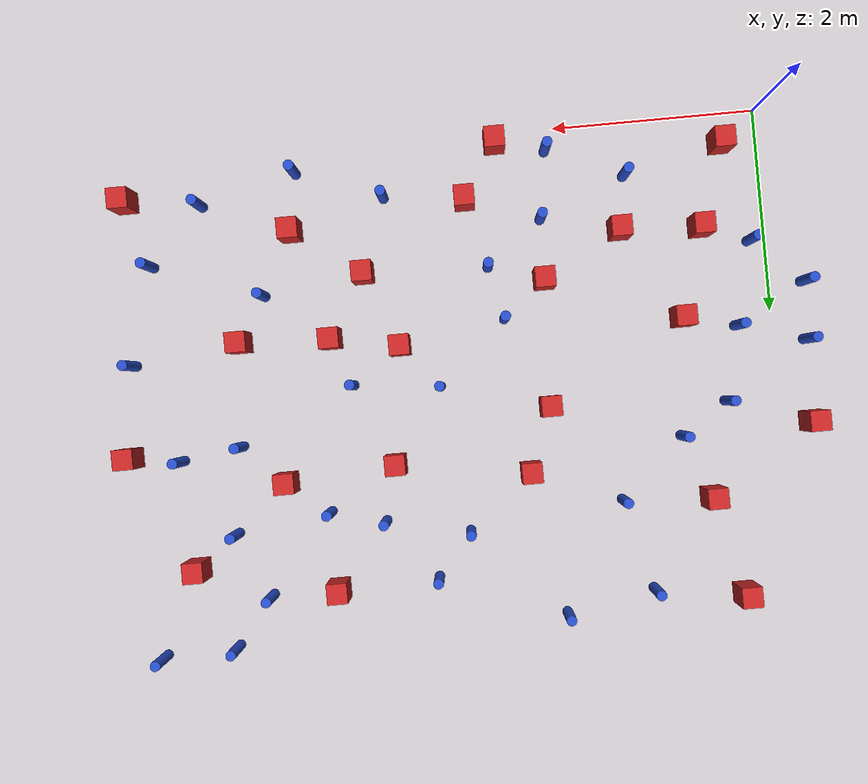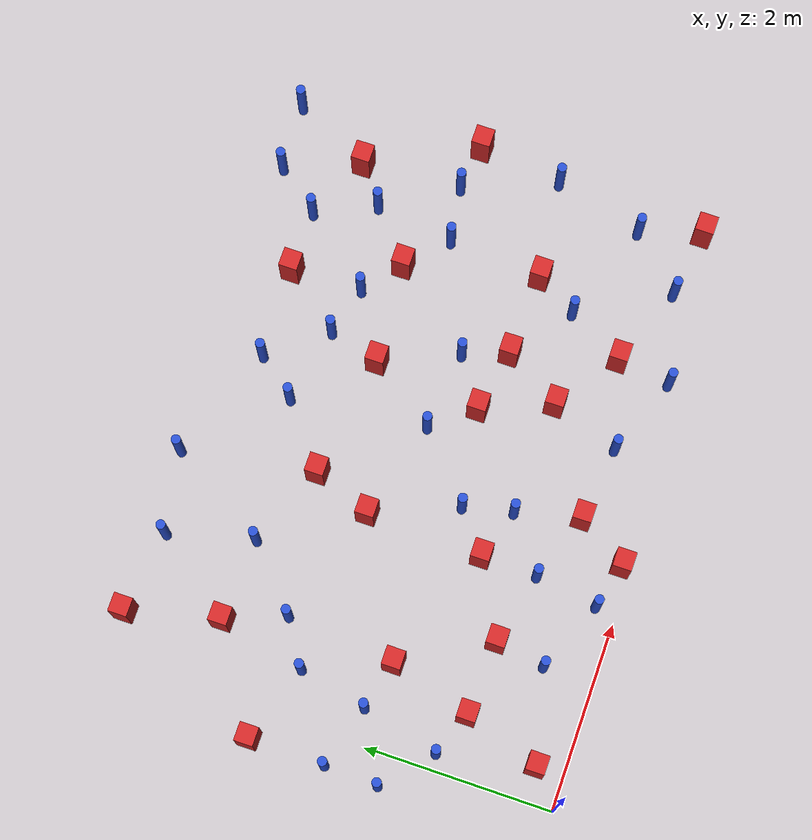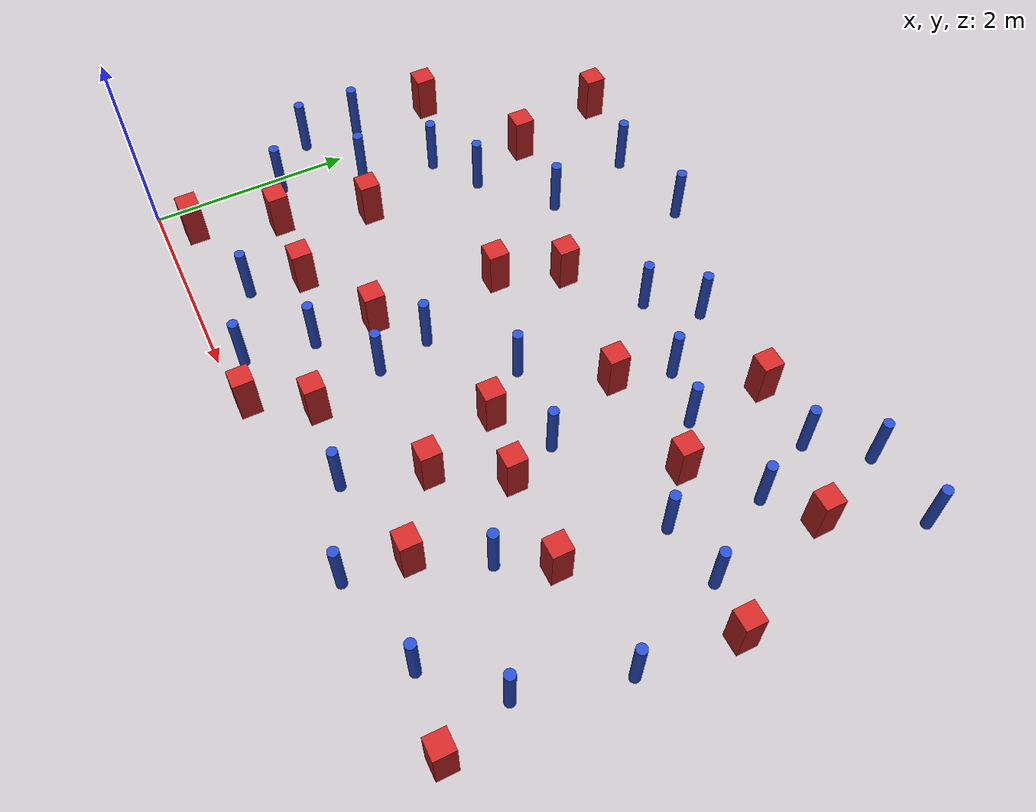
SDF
<sdf version="1.6">
 <model name="dense_69">
  <model name="pole_obstacle5">
   <static>true</static>
   <pose>5.55673570257 4.84575330785 7.38925637345e-09 -8.47170692796e-08 1.24976764786e-08 -1.74513093032e-07</pose>
   <link name="link">
    <pose>0 0 0.3 0 -0 0</pose>
    <inertial>
     <mass>1</mass>
     <inertia><ixx>0.145833</ixx><ixy>0</ixy><ixz>0</ixz><iyy>0.145833</iyy><iyz>0</iyz><izz>0.125</izz></inertia>
    </inertial>
    <collision name="collision">
     <geometry><cylinder><radius>0.05</radius><length>.6</length></cylinder></geometry>
    </collision>
    <visual name="visual">
     <geometry><cylinder><radius>0.05</radius><length>.6</length></cylinder></geometry>
     <material>
      <script><name>Gazebo/Blue</name><uri>file://media/materials/scripts/gazebo.material</uri></script>
     </material>
    </visual>
   </link>
  </model>
  <model name="pole_obstacle7">
   <static>true</static>
   <pose>0.532441098875 2.85423462872 7.38925637345e-09 -8.471706928e-08 1.2497676512e-08 -1.74513093015e-07</pose>
   <link name="link">
    <pose>0 0 0.3 0 -0 0</pose>
    <inertial>
     <mass>1</mass>
     <inertia><ixx>0.145833</ixx><ixy>0</ixy><ixz>0</ixz><iyy>0.145833</iyy><iyz>0</iyz><izz>0.125</izz></inertia>
    </inertial>
    <collision name="collision">
     <geometry><cylinder><radius>0.05</radius><length>.6</length></cylinder></geometry>
    </collision>
    <visual name="visual">
     <geometry><cylinder><radius>0.05</radius><length>.6</length></cylinder></geometry>
     <material>
      <script><name>Gazebo/Blue</name><uri>file://media/materials/scripts/gazebo.material</uri></script>
     </material>
    </visual>
   </link>
  </model>
  <model name="pole_obstacle9">
   <static>true</static>
   <pose>1.00213003306 3.16016807771 7.38925637345e-09 -8.471706928e-08 1.2497676505e-08 -1.74513093017e-07</pose>
   <link name="link">
    <pose>0 0 0.3 0 -0 0</pose>
    <inertial>
     <mass>1</mass>
     <inertia><ixx>0.145833</ixx><ixy>0</ixy><ixz>0</ixz><iyy>0.145833</iyy><iyz>0</iyz><izz>0.125</izz></inertia>
    </inertial>
    <collision name="collision">
     <geometry><cylinder><radius>0.05</radius><length>.6</length></cylinder></geometry>
    </collision>
    <visual name="visual">
     <geometry><cylinder><radius>0.05</radius><length>.6</length></cylinder></geometry>
     <material>
      <script><name>Gazebo/Blue</name><uri>file://media/materials/scripts/gazebo.material</uri></script>
     </material>
    </visual>
   </link>
  </model>
  <model name="pole_obstacle17">
   <static>true</static>
   <pose>6.28319913709 4.87998397393 7.38925637345e-09 -8.47170692796e-08 1.24976764786e-08 -1.74513093032e-07</pose>
   <link name="link">
    <pose>0 0 0.3 0 -0 0</pose>
    <inertial>
     <mass>1</mass>
     <inertia><ixx>0.145833</ixx><ixy>0</ixy><ixz>0</ixz><iyy>0.145833</iyy><iyz>0</iyz><izz>0.125</izz></inertia>
    </inertial>
    <collision name="collision">
     <geometry><cylinder><radius>0.05</radius><length>.6</length></cylinder></geometry>
    </collision>
    <visual name="visual">
     <geometry><cylinder><radius>0.05</radius><length>.6</length></cylinder></geometry>
     <material>
      <script><name>Gazebo/Blue</name><uri>file://media/materials/scripts/gazebo.material</uri></script>
     </material>
    </visual>
   </link>
  </model>
  <model name="square_post_obstacle13">
   <static>true</static>
   <pose>2.28083767182 2.75085976266 1.91545236811e-07 -7.35059704564e-06 1.12565212e-07 2.39332434364e-05</pose>
   <link name="link">
    <pose>0 0 0.25 0 -0 0</pose>
    <inertial>
     <mass>100</mass>
     <inertia>
      <ixx>0.166667</ixx>
      <ixy>0</ixy>
      <ixz>0</ixz>
      <iyy>0.166667</iyy>
      <iyz>0</iyz>
      <izz>0.166667</izz>
     </inertia>
    </inertial>
    <collision name="collision"><geometry><box><size>.2 .2 .5</size></box></geometry></collision>
    <visual name="visual">
     <geometry><box><size>.2 .2 .5</size></box></geometry>
     <material>
      <script><name>Gazebo/Red</name><uri>file://media/materials/scripts/gazebo.material</uri></script>
     </material>
    </visual>
   </link>
  </model>
  <model name="pole_obstacle18">
   <static>true</static>
   <pose>3.16765631383 3.91450374751 7.38925637345e-09 -8.47170692798e-08 1.24976764939e-08 -1.74513093025e-07</pose>
   <link name="link">
    <pose>0 0 0.3 0 -0 0</pose>
    <inertial>
     <mass>1</mass>
     <inertia><ixx>0.145833</ixx><ixy>0</ixy><ixz>0</ixz><iyy>0.145833</iyy><iyz>0</iyz><izz>0.125</izz></inertia>
    </inertial>
    <collision name="collision">
     <geometry><cylinder><radius>0.05</radius><length>.6</length></cylinder></geometry>
    </collision>
    <visual name="visual">
     <geometry><cylinder><radius>0.05</radius><length>.6</length></cylinder></geometry>
     <material>
      <script><name>Gazebo/Blue</name><uri>file://media/materials/scripts/gazebo.material</uri></script>
     </material>
    </visual>
   </link>
  </model>
  <model name="pole_obstacle21">
   <static>true</static>
   <pose>2.21009138485 0.893651073297 7.38925637345e-09 -8.471706928e-08 1.24976765177e-08 -1.74513093012e-07</pose>
   <link name="link">
    <pose>0 0 0.3 0 -0 0</pose>
    <inertial>
     <mass>1</mass>
     <inertia><ixx>0.145833</ixx><ixy>0</ixy><ixz>0</ixz><iyy>0.145833</iyy><iyz>0</iyz><izz>0.125</izz></inertia>
    </inertial>
    <collision name="collision">
     <geometry><cylinder><radius>0.05</radius><length>.6</length></cylinder></geometry>
    </collision>
    <visual name="visual">
     <geometry><cylinder><radius>0.05</radius><length>.6</length></cylinder></geometry>
     <material>
      <script><name>Gazebo/Blue</name><uri>file://media/materials/scripts/gazebo.material</uri></script>
     </material>
    </visual>
   </link>
  </model>
  <model name="pole_obstacle23">
   <static>true</static>
   <pose>5.54783831902 0.467187167467 7.38925637345e-09 -8.47170692799e-08 1.24976765124e-08 -1.74513093015e-07</pose>
   <link name="link">
    <pose>0 0 0.3 0 -0 0</pose>
    <inertial>
     <mass>1</mass>
     <inertia><ixx>0.145833</ixx><ixy>0</ixy><ixz>0</ixz><iyy>0.145833</iyy><iyz>0</iyz><izz>0.125</izz></inertia>
    </inertial>
    <collision name="collision">
     <geometry><cylinder><radius>0.05</radius><length>.6</length></cylinder></geometry>
    </collision>
    <visual name="visual">
     <geometry><cylinder><radius>0.05</radius><length>.6</length></cylinder></geometry>
     <material>
      <script><name>Gazebo/Blue</name><uri>file://media/materials/scripts/gazebo.material</uri></script>
     </material>
    </visual>
   </link>
  </model>
  <model name="pole_obstacle28">
   <static>true</static>
   <pose>3.51916999006 4.34252226868 7.38925637345e-09 -8.47170692798e-08 1.24976765033e-08 -1.74513093019e-07</pose>
   <link name="link">
    <pose>0 0 0.3 0 -0 0</pose>
    <inertial>
     <mass>1</mass>
     <inertia><ixx>0.145833</ixx><ixy>0</ixy><ixz>0</ixz><iyy>0.145833</iyy><iyz>0</iyz><izz>0.125</izz></inertia>
    </inertial>
    <collision name="collision">
     <geometry><cylinder><radius>0.05</radius><length>.6</length></cylinder></geometry>
    </collision>
    <visual name="visual">
     <geometry><cylinder><radius>0.05</radius><length>.6</length></cylinder></geometry>
     <material>
      <script><name>Gazebo/Blue</name><uri>file://media/materials/scripts/gazebo.material</uri></script>
     </material>
    </visual>
   </link>
  </model>
  <model name="square_post_obstacle21">
   <static>true</static>
   <pose>2.23076360329 1.49692079354 1.91545236811e-07 -7.35059704564e-06 1.12565212e-07 2.39332434364e-05</pose>
   <link name="link">
    <pose>0 0 0.25 0 -0 0</pose>
    <inertial>
     <mass>100</mass>
     <inertia>
      <ixx>0.166667</ixx>
      <ixy>0</ixy>
      <ixz>0</ixz>
      <iyy>0.166667</iyy>
      <iyz>0</iyz>
      <izz>0.166667</izz>
     </inertia>
    </inertial>
    <collision name="collision"><geometry><box><size>.2 .2 .5</size></box></geometry></collision>
    <visual name="visual">
     <geometry><box><size>.2 .2 .5</size></box></geometry>
     <material>
      <script><name>Gazebo/Red</name><uri>file://media/materials/scripts/gazebo.material</uri></script>
     </material>
    </visual>
   </link>
  </model>
  <model name="pole_obstacle37">
   <static>true</static>
   <pose>5.35044045971 2.87964479079 7.38925637345e-09 -8.47170692798e-08 1.24976764937e-08 -1.74513093023e-07</pose>
   <link name="link">
    <pose>0 0 0.3 0 -0 0</pose>
    <inertial>
     <mass>1</mass>
     <inertia><ixx>0.145833</ixx><ixy>0</ixy><ixz>0</ixz><iyy>0.145833</iyy><iyz>0</iyz><izz>0.125</izz></inertia>
    </inertial>
    <collision name="collision">
     <geometry><cylinder><radius>0.05</radius><length>.6</length></cylinder></geometry>
    </collision>
    <visual name="visual">
     <geometry><cylinder><radius>0.05</radius><length>.6</length></cylinder></geometry>
     <material>
      <script><name>Gazebo/Blue</name><uri>file://media/materials/scripts/gazebo.material</uri></script>
     </material>
    </visual>
   </link>
  </model>
  <model name="pole_obstacle44">
   <static>true</static>
   <pose>2.10710809087 0.223145361829 7.38925637345e-09 -8.471706928e-08 1.24976765149e-08 -1.74513093013e-07</pose>
   <link name="link">
    <pose>0 0 0.3 0 -0 0</pose>
    <inertial>
     <mass>1</mass>
     <inertia><ixx>0.145833</ixx><ixy>0</ixy><ixz>0</ixz><iyy>0.145833</iyy><iyz>0</iyz><izz>0.125</izz></inertia>
    </inertial>
    <collision name="collision">
     <geometry><cylinder><radius>0.05</radius><length>.6</length></cylinder></geometry>
    </collision>
    <visual name="visual">
     <geometry><cylinder><radius>0.05</radius><length>.6</length></cylinder></geometry>
     <material>
      <script><name>Gazebo/Blue</name><uri>file://media/materials/scripts/gazebo.material</uri></script>
     </material>
    </visual>
   </link>
  </model>
  <model name="pole_obstacle46">
   <static>true</static>
   <pose>4.52830563472 3.60224516928 7.38925637345e-09 -8.47170692798e-08 1.24976764937e-08 -1.74513093023e-07</pose>
   <link name="link">
    <pose>0 0 0.3 0 -0 0</pose>
    <inertial>
     <mass>1</mass>
     <inertia><ixx>0.145833</ixx><ixy>0</ixy><ixz>0</ixz><iyy>0.145833</iyy><iyz>0</iyz><izz>0.125</izz></inertia>
    </inertial>
    <collision name="collision">
     <geometry><cylinder><radius>0.05</radius><length>.6</length></cylinder></geometry>
    </collision>
    <visual name="visual">
     <geometry><cylinder><radius>0.05</radius><length>.6</length></cylinder></geometry>
     <material>
      <script><name>Gazebo/Blue</name><uri>file://media/materials/scripts/gazebo.material</uri></script>
     </material>
    </visual>
   </link>
  </model>
  <model name="pole_obstacle49">
   <static>true</static>
   <pose>6.34472098922 1.98970824934 7.38925637345e-09 -8.471706928e-08 1.24976765177e-08 -1.74513093012e-07</pose>
   <link name="link">
    <pose>0 0 0.3 0 -0 0</pose>
    <inertial>
     <mass>1</mass>
     <inertia><ixx>0.145833</ixx><ixy>0</ixy><ixz>0</ixz><iyy>0.145833</iyy><iyz>0</iyz><izz>0.125</izz></inertia>
    </inertial>
    <collision name="collision">
     <geometry><cylinder><radius>0.05</radius><length>.6</length></cylinder></geometry>
    </collision>
    <visual name="visual">
     <geometry><cylinder><radius>0.05</radius><length>.6</length></cylinder></geometry>
     <material>
      <script><name>Gazebo/Blue</name><uri>file://media/materials/scripts/gazebo.material</uri></script>
     </material>
    </visual>
   </link>
  </model>
  <model name="pole_obstacle50">
   <static>true</static>
   <pose>3.34170360058 2.46092278709 7.38925637345e-09 -8.47170692798e-08 1.24976764939e-08 -1.74513093025e-07</pose>
   <link name="link">
    <pose>0 0 0.3 0 -0 0</pose>
    <inertial>
     <mass>1</mass>
     <inertia><ixx>0.145833</ixx><ixy>0</ixy><ixz>0</ixz><iyy>0.145833</iyy><iyz>0</iyz><izz>0.125</izz></inertia>
    </inertial>
    <collision name="collision">
     <geometry><cylinder><radius>0.05</radius><length>.6</length></cylinder></geometry>
    </collision>
    <visual name="visual">
     <geometry><cylinder><radius>0.05</radius><length>.6</length></cylinder></geometry>
     <material>
      <script><name>Gazebo/Blue</name><uri>file://media/materials/scripts/gazebo.material</uri></script>
     </material>
    </visual>
   </link>
  </model>
  <model name="pole_obstacle52">
   <static>true</static>
   <pose>4.19954542131 2.37302493181 7.38925637345e-09 -8.47170692798e-08 1.24976764937e-08 -1.74513093023e-07</pose>
   <link name="link">
    <pose>0 0 0.3 0 -0 0</pose>
    <inertial>
     <mass>1</mass>
     <inertia><ixx>0.145833</ixx><ixy>0</ixy><ixz>0</ixz><iyy>0.145833</iyy><iyz>0</iyz><izz>0.125</izz></inertia>
    </inertial>
    <collision name="collision">
     <geometry><cylinder><radius>0.05</radius><length>.6</length></cylinder></geometry>
    </collision>
    <visual name="visual">
     <geometry><cylinder><radius>0.05</radius><length>.6</length></cylinder></geometry>
     <material>
      <script><name>Gazebo/Blue</name><uri>file://media/materials/scripts/gazebo.material</uri></script>
     </material>
    </visual>
   </link>
  </model>
  <model name="square_post_obstacle61">
   <static>true</static>
   <pose>4.0006515945 1.27892574412 1.91545236811e-07 -7.35059704564e-06 1.12565212e-07 2.39332434364e-05</pose>
   <link name="link">
    <pose>0 0 0.25 0 -0 0</pose>
    <inertial>
     <mass>100</mass>
     <inertia>
      <ixx>0.166667</ixx>
      <ixy>0</ixy>
      <ixz>0</ixz>
      <iyy>0.166667</iyy>
      <iyz>0</iyz>
      <izz>0.166667</izz>
     </inertia>
    </inertial>
    <collision name="collision"><geometry><box><size>.2 .2 .5</size></box></geometry></collision>
    <visual name="visual">
     <geometry><box><size>.2 .2 .5</size></box></geometry>
     <material>
      <script><name>Gazebo/Red</name><uri>file://media/materials/scripts/gazebo.material</uri></script>
     </material>
    </visual>
   </link>
  </model>
  <model name="pole_obstacle72">
   <static>true</static>
   <pose>5.00497837304 1.41281460481 7.38925637345e-09 -8.471706928e-08 1.24976765134e-08 -1.74513093015e-07</pose>
   <link name="link">
    <pose>0 0 0.3 0 -0 0</pose>
    <inertial>
     <mass>1</mass>
     <inertia><ixx>0.145833</ixx><ixy>0</ixy><ixz>0</ixz><iyy>0.145833</iyy><iyz>0</iyz><izz>0.125</izz></inertia>
    </inertial>
    <collision name="collision">
     <geometry><cylinder><radius>0.05</radius><length>.6</length></cylinder></geometry>
    </collision>
    <visual name="visual">
     <geometry><cylinder><radius>0.05</radius><length>.6</length></cylinder></geometry>
     <material>
      <script><name>Gazebo/Blue</name><uri>file://media/materials/scripts/gazebo.material</uri></script>
     </material>
    </visual>
   </link>
  </model>
  <model name="square_post_obstacle63">
   <static>true</static>
   <pose>6.28418131299 0.368413463434 1.91545236811e-07 -7.35059704564e-06 1.12565212e-07 2.39332434364e-05</pose>
   <link name="link">
    <pose>0 0 0.25 0 -0 0</pose>
    <inertial>
     <mass>100</mass>
     <inertia>
      <ixx>0.166667</ixx>
      <ixy>0</ixy>
      <ixz>0</ixz>
      <iyy>0.166667</iyy>
      <iyz>0</iyz>
      <izz>0.166667</izz>
     </inertia>
    </inertial>
    <collision name="collision"><geometry><box><size>.2 .2 .5</size></box></geometry></collision>
    <visual name="visual">
     <geometry><box><size>.2 .2 .5</size></box></geometry>
     <material>
      <script><name>Gazebo/Red</name><uri>file://media/materials/scripts/gazebo.material</uri></script>
     </material>
    </visual>
   </link>
  </model>
  <model name="pole_obstacle73">
   <static>true</static>
   <pose>5.46847056644 3.73583330618 7.38925637345e-09 -8.47170692798e-08 1.24976764937e-08 -1.74513093023e-07</pose>
   <link name="link">
    <pose>0 0 0.3 0 -0 0</pose>
    <inertial>
     <mass>1</mass>
     <inertia><ixx>0.145833</ixx><ixy>0</ixy><ixz>0</ixz><iyy>0.145833</iyy><iyz>0</iyz><izz>0.125</izz></inertia>
    </inertial>
    <collision name="collision">
     <geometry><cylinder><radius>0.05</radius><length>.6</length></cylinder></geometry>
    </collision>
    <visual name="visual">
     <geometry><cylinder><radius>0.05</radius><length>.6</length></cylinder></geometry>
     <material>
      <script><name>Gazebo/Blue</name><uri>file://media/materials/scripts/gazebo.material</uri></script>
     </material>
    </visual>
   </link>
  </model>
  <model name="square_post_obstacle71">
   <static>true</static>
   <pose>5.27163771688 1.85732565873 1.91545236811e-07 -7.35059704564e-06 1.12565212e-07 2.39332434364e-05</pose>
   <link name="link">
    <pose>0 0 0.25 0 -0 0</pose>
    <inertial>
     <mass>100</mass>
     <inertia>
      <ixx>0.166667</ixx>
      <ixy>0</ixy>
      <ixz>0</ixz>
      <iyy>0.166667</iyy>
      <iyz>0</iyz>
      <izz>0.166667</izz>
     </inertia>
    </inertial>
    <collision name="collision"><geometry><box><size>.2 .2 .5</size></box></geometry></collision>
    <visual name="visual">
     <geometry><box><size>.2 .2 .5</size></box></geometry>
     <material>
      <script><name>Gazebo/Red</name><uri>file://media/materials/scripts/gazebo.material</uri></script>
     </material>
    </visual>
   </link>
  </model>
  <model name="square_post_obstacle80">
   <static>true</static>
   <pose>4.50756013497 4.36634741039 1.91545236811e-07 -7.35059704564e-06 1.12565212e-07 2.39332434364e-05</pose>
   <link name="link">
    <pose>0 0 0.25 0 -0 0</pose>
    <inertial>
     <mass>100</mass>
     <inertia>
      <ixx>0.166667</ixx>
      <ixy>0</ixy>
      <ixz>0</ixz>
      <iyy>0.166667</iyy>
      <iyz>0</iyz>
      <izz>0.166667</izz>
     </inertia>
    </inertial>
    <collision name="collision"><geometry><box><size>.2 .2 .5</size></box></geometry></collision>
    <visual name="visual">
     <geometry><box><size>.2 .2 .5</size></box></geometry>
     <material>
      <script><name>Gazebo/Red</name><uri>file://media/materials/scripts/gazebo.material</uri></script>
     </material>
    </visual>
   </link>
  </model>
  <model name="pole_obstacle97">
   <static>true</static>
   <pose>-0.32615713015 1.74065500919 7.38925637345e-09 -8.47170692798e-08 1.24976765025e-08 -1.74513093018e-07</pose>
   <link name="link">
    <pose>0 0 0.3 0 -0 0</pose>
    <inertial>
     <mass>1</mass>
     <inertia><ixx>0.145833</ixx><ixy>0</ixy><ixz>0</ixz><iyy>0.145833</iyy><iyz>0</iyz><izz>0.125</izz></inertia>
    </inertial>
    <collision name="collision">
     <geometry><cylinder><radius>0.05</radius><length>.6</length></cylinder></geometry>
    </collision>
    <visual name="visual">
     <geometry><cylinder><radius>0.05</radius><length>.6</length></cylinder></geometry>
     <material>
      <script><name>Gazebo/Blue</name><uri>file://media/materials/scripts/gazebo.material</uri></script>
     </material>
    </visual>
   </link>
  </model>
  <model name="square_post_obstacle89">
   <static>true</static>
   <pose>2.60250662848 0.103340393938 1.91545236811e-07 -7.35059704564e-06 1.12565212e-07 2.39332434364e-05</pose>
   <link name="link">
    <pose>0 0 0.25 0 -0 0</pose>
    <inertial>
     <mass>100</mass>
     <inertia>
      <ixx>0.166667</ixx>
      <ixy>0</ixy>
      <ixz>0</ixz>
      <iyy>0.166667</iyy>
      <iyz>0</iyz>
      <izz>0.166667</izz>
     </inertia>
    </inertial>
    <collision name="collision"><geometry><box><size>.2 .2 .5</size></box></geometry></collision>
    <visual name="visual">
     <geometry><box><size>.2 .2 .5</size></box></geometry>
     <material>
      <script><name>Gazebo/Red</name><uri>file://media/materials/scripts/gazebo.material</uri></script>
     </material>
    </visual>
   </link>
  </model>
  <model name="pole_obstacle106">
   <static>true</static>
   <pose>6.08519039991 1.02775028315 7.38925637345e-09 -8.47170692801e-08 1.24976765139e-08 -1.74513093014e-07</pose>
   <link name="link">
    <pose>0 0 0.3 0 -0 0</pose>
    <inertial>
     <mass>1</mass>
     <inertia><ixx>0.145833</ixx><ixy>0</ixy><ixz>0</ixz><iyy>0.145833</iyy><iyz>0</iyz><izz>0.125</izz></inertia>
    </inertial>
    <collision name="collision">
     <geometry><cylinder><radius>0.05</radius><length>.6</length></cylinder></geometry>
    </collision>
    <visual name="visual">
     <geometry><cylinder><radius>0.05</radius><length>.6</length></cylinder></geometry>
     <material>
      <script><name>Gazebo/Blue</name><uri>file://media/materials/scripts/gazebo.material</uri></script>
     </material>
    </visual>
   </link>
  </model>
  <model name="pole_obstacle107">
   <static>true</static>
   <pose>1.34963532928 0.538935121749 7.38925637345e-09 -8.47170692799e-08 1.24976765051e-08 -1.74513093017e-07</pose>
   <link name="link">
    <pose>0 0 0.3 0 -0 0</pose>
    <inertial>
     <mass>1</mass>
     <inertia><ixx>0.145833</ixx><ixy>0</ixy><ixz>0</ixz><iyy>0.145833</iyy><iyz>0</iyz><izz>0.125</izz></inertia>
    </inertial>
    <collision name="collision">
     <geometry><cylinder><radius>0.05</radius><length>.6</length></cylinder></geometry>
    </collision>
    <visual name="visual">
     <geometry><cylinder><radius>0.05</radius><length>.6</length></cylinder></geometry>
     <material>
      <script><name>Gazebo/Blue</name><uri>file://media/materials/scripts/gazebo.material</uri></script>
     </material>
    </visual>
   </link>
  </model>
  <model name="pole_obstacle112">
   <static>true</static>
   <pose>3.99160633346 3.74183412597 7.38925637345e-09 -8.47170692796e-08 1.24976764765e-08 -1.74513093035e-07</pose>
   <link name="link">
    <pose>0 0 0.3 0 -0 0</pose>
    <inertial>
     <mass>1</mass>
     <inertia><ixx>0.145833</ixx><ixy>0</ixy><ixz>0</ixz><iyy>0.145833</iyy><iyz>0</iyz><izz>0.125</izz></inertia>
    </inertial>
    <collision name="collision">
     <geometry><cylinder><radius>0.05</radius><length>.6</length></cylinder></geometry>
    </collision>
    <visual name="visual">
     <geometry><cylinder><radius>0.05</radius><length>.6</length></cylinder></geometry>
     <material>
      <script><name>Gazebo/Blue</name><uri>file://media/materials/scripts/gazebo.material</uri></script>
     </material>
    </visual>
   </link>
  </model>
  <model name="pole_obstacle114">
   <static>true</static>
   <pose>2.76901986628 1.32314055388 7.38925637345e-09 -8.471706928e-08 1.24976765152e-08 -1.74513093012e-07</pose>
   <link name="link">
    <pose>0 0 0.3 0 -0 0</pose>
    <inertial>
     <mass>1</mass>
     <inertia><ixx>0.145833</ixx><ixy>0</ixy><ixz>0</ixz><iyy>0.145833</iyy><iyz>0</iyz><izz>0.125</izz></inertia>
    </inertial>
    <collision name="collision">
     <geometry><cylinder><radius>0.05</radius><length>.6</length></cylinder></geometry>
    </collision>
    <visual name="visual">
     <geometry><cylinder><radius>0.05</radius><length>.6</length></cylinder></geometry>
     <material>
      <script><name>Gazebo/Blue</name><uri>file://media/materials/scripts/gazebo.material</uri></script>
     </material>
    </visual>
   </link>
  </model>
  <model name="square_post_obstacle112">
   <static>true</static>
   <pose>2.52562571841 3.37923398145 1.91545236811e-07 -7.35059704564e-06 1.12565212e-07 2.39332434364e-05</pose>
   <link name="link">
    <pose>0 0 0.25 0 -0 0</pose>
    <inertial>
     <mass>100</mass>
     <inertia>
      <ixx>0.166667</ixx>
      <ixy>0</ixy>
      <ixz>0</ixz>
      <iyy>0.166667</iyy>
      <iyz>0</iyz>
      <izz>0.166667</izz>
     </inertia>
    </inertial>
    <collision name="collision"><geometry><box><size>.2 .2 .5</size></box></geometry></collision>
    <visual name="visual">
     <geometry><box><size>.2 .2 .5</size></box></geometry>
     <material>
      <script><name>Gazebo/Red</name><uri>file://media/materials/scripts/gazebo.material</uri></script>
     </material>
    </visual>
   </link>
  </model>
  <model name="pole_obstacle122">
   <static>true</static>
   <pose>4.59309335914 0.223079105937 7.38925637345e-09 -8.471706928e-08 1.24976765136e-08 -1.74513093014e-07</pose>
   <link name="link">
    <pose>0 0 0.3 0 -0 0</pose>
    <inertial>
     <mass>1</mass>
     <inertia><ixx>0.145833</ixx><ixy>0</ixy><ixz>0</ixz><iyy>0.145833</iyy><iyz>0</iyz><izz>0.125</izz></inertia>
    </inertial>
    <collision name="collision">
     <geometry><cylinder><radius>0.05</radius><length>.6</length></cylinder></geometry>
    </collision>
    <visual name="visual">
     <geometry><cylinder><radius>0.05</radius><length>.6</length></cylinder></geometry>
     <material>
      <script><name>Gazebo/Blue</name><uri>file://media/materials/scripts/gazebo.material</uri></script>
     </material>
    </visual>
   </link>
  </model>
  <model name="pole_obstacle123">
   <static>true</static>
   <pose>0.368179082711 2.11984878527 7.38925637345e-09 -8.471706928e-08 1.24976765084e-08 -1.74513093017e-07</pose>
   <link name="link">
    <pose>0 0 0.3 0 -0 0</pose>
    <inertial>
     <mass>1</mass>
     <inertia><ixx>0.145833</ixx><ixy>0</ixy><ixz>0</ixz><iyy>0.145833</iyy><iyz>0</iyz><izz>0.125</izz></inertia>
    </inertial>
    <collision name="collision">
     <geometry><cylinder><radius>0.05</radius><length>.6</length></cylinder></geometry>
    </collision>
    <visual name="visual">
     <geometry><cylinder><radius>0.05</radius><length>.6</length></cylinder></geometry>
     <material>
      <script><name>Gazebo/Blue</name><uri>file://media/materials/scripts/gazebo.material</uri></script>
     </material>
    </visual>
   </link>
  </model>
  <model name="square_post_obstacle122">
   <static>true</static>
   <pose>1.44876488814 1.07078228759 1.91545236811e-07 -7.35059704564e-06 1.12565212e-07 2.39332434364e-05</pose>
   <link name="link">
    <pose>0 0 0.25 0 -0 0</pose>
    <inertial>
     <mass>100</mass>
     <inertia>
      <ixx>0.166667</ixx>
      <ixy>0</ixy>
      <ixz>0</ixz>
      <iyy>0.166667</iyy>
      <iyz>0</iyz>
      <izz>0.166667</izz>
     </inertia>
    </inertial>
    <collision name="collision"><geometry><box><size>.2 .2 .5</size></box></geometry></collision>
    <visual name="visual">
     <geometry><box><size>.2 .2 .5</size></box></geometry>
     <material>
      <script><name>Gazebo/Red</name><uri>file://media/materials/scripts/gazebo.material</uri></script>
     </material>
    </visual>
   </link>
  </model>
  <model name="square_post_obstacle131">
   <static>true</static>
   <pose>4.37579584194 1.89778178041 1.91545236811e-07 -7.35059704564e-06 1.12565212e-07 2.39332434364e-05</pose>
   <link name="link">
    <pose>0 0 0.25 0 -0 0</pose>
    <inertial>
     <mass>100</mass>
     <inertia>
      <ixx>0.166667</ixx>
      <ixy>0</ixy>
      <ixz>0</ixz>
      <iyy>0.166667</iyy>
      <iyz>0</iyz>
      <izz>0.166667</izz>
     </inertia>
    </inertial>
    <collision name="collision"><geometry><box><size>.2 .2 .5</size></box></geometry></collision>
    <visual name="visual">
     <geometry><box><size>.2 .2 .5</size></box></geometry>
     <material>
      <script><name>Gazebo/Red</name><uri>file://media/materials/scripts/gazebo.material</uri></script>
     </material>
    </visual>
   </link>
  </model>
  <model name="square_post_obstacle139">
   <static>true</static>
   <pose>5.8768017668 4.04419407934 1.91545236811e-07 -7.35059704564e-06 1.12565212e-07 2.39332434364e-05</pose>
   <link name="link">
    <pose>0 0 0.25 0 -0 0</pose>
    <inertial>
     <mass>100</mass>
     <inertia>
      <ixx>0.166667</ixx>
      <ixy>0</ixy>
      <ixz>0</ixz>
      <iyy>0.166667</iyy>
      <iyz>0</iyz>
      <izz>0.166667</izz>
     </inertia>
    </inertial>
    <collision name="collision"><geometry><box><size>.2 .2 .5</size></box></geometry></collision>
    <visual name="visual">
     <geometry><box><size>.2 .2 .5</size></box></geometry>
     <material>
      <script><name>Gazebo/Red</name><uri>file://media/materials/scripts/gazebo.material</uri></script>
     </material>
    </visual>
   </link>
  </model>
  <model name="square_post_obstacle143">
   <static>true</static>
   <pose>0.378678538605 0.300644708166 1.91545236811e-07 -7.35059704564e-06 1.12565212e-07 2.39332434364e-05</pose>
   <link name="link">
    <pose>0 0 0.25 0 -0 0</pose>
    <inertial>
     <mass>100</mass>
     <inertia>
      <ixx>0.166667</ixx>
      <ixy>0</ixy>
      <ixz>0</ixz>
      <iyy>0.166667</iyy>
      <iyz>0</iyz>
      <izz>0.166667</izz>
     </inertia>
    </inertial>
    <collision name="collision"><geometry><box><size>.2 .2 .5</size></box></geometry></collision>
    <visual name="visual">
     <geometry><box><size>.2 .2 .5</size></box></geometry>
     <material>
      <script><name>Gazebo/Red</name><uri>file://media/materials/scripts/gazebo.material</uri></script>
     </material>
    </visual>
   </link>
  </model>
  <model name="pole_obstacle150">
   <static>true</static>
   <pose>1.64222078824 3.74040015847 7.38925637345e-09 -8.47170692799e-08 1.24976765053e-08 -1.74513093017e-07</pose>
   <link name="link">
    <pose>0 0 0.3 0 -0 0</pose>
    <inertial>
     <mass>1</mass>
     <inertia><ixx>0.145833</ixx><ixy>0</ixy><ixz>0</ixz><iyy>0.145833</iyy><iyz>0</iyz><izz>0.125</izz></inertia>
    </inertial>
    <collision name="collision">
     <geometry><cylinder><radius>0.05</radius><length>.6</length></cylinder></geometry>
    </collision>
    <visual name="visual">
     <geometry><cylinder><radius>0.05</radius><length>.6</length></cylinder></geometry>
     <material>
      <script><name>Gazebo/Blue</name><uri>file://media/materials/scripts/gazebo.material</uri></script>
     </material>
    </visual>
   </link>
  </model>
  <model name="square_post_obstacle146">
   <static>true</static>
   <pose>0.904602496916 1.9897970902 1.91545236811e-07 -7.35059704564e-06 1.12565212e-07 2.39332434364e-05</pose>
   <link name="link">
    <pose>0 0 0.25 0 -0 0</pose>
    <inertial>
     <mass>100</mass>
     <inertia>
      <ixx>0.166667</ixx>
      <ixy>0</ixy>
      <ixz>0</ixz>
      <iyy>0.166667</iyy>
      <iyz>0</iyz>
      <izz>0.166667</izz>
     </inertia>
    </inertial>
    <collision name="collision"><geometry><box><size>.2 .2 .5</size></box></geometry></collision>
    <visual name="visual">
     <geometry><box><size>.2 .2 .5</size></box></geometry>
     <material>
      <script><name>Gazebo/Red</name><uri>file://media/materials/scripts/gazebo.material</uri></script>
     </material>
    </visual>
   </link>
  </model>
  <model name="pole_obstacle154">
   <static>true</static>
   <pose>5.95091501011 2.97181213031 7.38925637345e-09 -8.47170692798e-08 1.24976764937e-08 -1.74513093023e-07</pose>
   <link name="link">
    <pose>0 0 0.3 0 -0 0</pose>
    <inertial>
     <mass>1</mass>
     <inertia><ixx>0.145833</ixx><ixy>0</ixy><ixz>0</ixz><iyy>0.145833</iyy><iyz>0</iyz><izz>0.125</izz></inertia>
    </inertial>
    <collision name="collision">
     <geometry><cylinder><radius>0.05</radius><length>.6</length></cylinder></geometry>
    </collision>
    <visual name="visual">
     <geometry><cylinder><radius>0.05</radius><length>.6</length></cylinder></geometry>
     <material>
      <script><name>Gazebo/Blue</name><uri>file://media/materials/scripts/gazebo.material</uri></script>
     </material>
    </visual>
   </link>
  </model>
  <model name="pole_obstacle161">
   <static>true</static>
   <pose>2.65067386683 1.84908204365 7.38925637345e-09 -8.471706928e-08 1.24976765152e-08 -1.74513093012e-07</pose>
   <link name="link">
    <pose>0 0 0.3 0 -0 0</pose>
    <inertial>
     <mass>1</mass>
     <inertia><ixx>0.145833</ixx><ixy>0</ixy><ixz>0</ixz><iyy>0.145833</iyy><iyz>0</iyz><izz>0.125</izz></inertia>
    </inertial>
    <collision name="collision">
     <geometry><cylinder><radius>0.05</radius><length>.6</length></cylinder></geometry>
    </collision>
    <visual name="visual">
     <geometry><cylinder><radius>0.05</radius><length>.6</length></cylinder></geometry>
     <material>
      <script><name>Gazebo/Blue</name><uri>file://media/materials/scripts/gazebo.material</uri></script>
     </material>
    </visual>
   </link>
  </model>
  <model name="square_post_obstacle155">
   <static>true</static>
   <pose>3.70019252356 2.02385575039 1.91545236811e-07 -7.35059704564e-06 1.12565212e-07 2.39332434364e-05</pose>
   <link name="link">
    <pose>0 0 0.25 0 -0 0</pose>
    <inertial>
     <mass>100</mass>
     <inertia>
      <ixx>0.166667</ixx>
      <ixy>0</ixy>
      <ixz>0</ixz>
      <iyy>0.166667</iyy>
      <iyz>0</iyz>
      <izz>0.166667</izz>
     </inertia>
    </inertial>
    <collision name="collision"><geometry><box><size>.2 .2 .5</size></box></geometry></collision>
    <visual name="visual">
     <geometry><box><size>.2 .2 .5</size></box></geometry>
     <material>
      <script><name>Gazebo/Red</name><uri>file://media/materials/scripts/gazebo.material</uri></script>
     </material>
    </visual>
   </link>
  </model>
  <model name="square_post_obstacle158">
   <static>true</static>
   <pose>0.64792067822 1.11463773155 1.91545236811e-07 -7.35059704564e-06 1.12565212e-07 2.39332434364e-05</pose>
   <link name="link">
    <pose>0 0 0.25 0 -0 0</pose>
    <inertial>
     <mass>100</mass>
     <inertia>
      <ixx>0.166667</ixx>
      <ixy>0</ixy>
      <ixz>0</ixz>
      <iyy>0.166667</iyy>
      <iyz>0</iyz>
      <izz>0.166667</izz>
     </inertia>
    </inertial>
    <collision name="collision"><geometry><box><size>.2 .2 .5</size></box></geometry></collision>
    <visual name="visual">
     <geometry><box><size>.2 .2 .5</size></box></geometry>
     <material>
      <script><name>Gazebo/Red</name><uri>file://media/materials/scripts/gazebo.material</uri></script>
     </material>
    </visual>
   </link>
  </model>
  <model name="square_post_obstacle161">
   <static>true</static>
   <pose>0.762491734584 3.78433887787 1.91545236811e-07 -7.35059704564e-06 1.12565212e-07 2.39332434364e-05</pose>
   <link name="link">
    <pose>0 0 0.25 0 -0 0</pose>
    <inertial>
     <mass>100</mass>
     <inertia>
      <ixx>0.166667</ixx>
      <ixy>0</ixy>
      <ixz>0</ixz>
      <iyy>0.166667</iyy>
      <iyz>0</iyz>
      <izz>0.166667</izz>
     </inertia>
    </inertial>
    <collision name="collision"><geometry><box><size>.2 .2 .5</size></box></geometry></collision>
    <visual name="visual">
     <geometry><box><size>.2 .2 .5</size></box></geometry>
     <material>
      <script><name>Gazebo/Red</name><uri>file://media/materials/scripts/gazebo.material</uri></script>
     </material>
    </visual>
   </link>
  </model>
  <model name="square_post_obstacle170">
   <static>true</static>
   <pose>3.84280091995 3.18569493445 1.91545236811e-07 -7.35059704564e-06 1.12565212e-07 2.39332434364e-05</pose>
   <link name="link">
    <pose>0 0 0.25 0 -0 0</pose>
    <inertial>
     <mass>100</mass>
     <inertia>
      <ixx>0.166667</ixx>
      <ixy>0</ixy>
      <ixz>0</ixz>
      <iyy>0.166667</iyy>
      <iyz>0</iyz>
      <izz>0.166667</izz>
     </inertia>
    </inertial>
    <collision name="collision"><geometry><box><size>.2 .2 .5</size></box></geometry></collision>
    <visual name="visual">
     <geometry><box><size>.2 .2 .5</size></box></geometry>
     <material>
      <script><name>Gazebo/Red</name><uri>file://media/materials/scripts/gazebo.material</uri></script>
     </material>
    </visual>
   </link>
  </model>
  <model name="pole_obstacle174">
   <static>true</static>
   <pose>3.74215431314 0.542656046708 7.38925637345e-09 -8.471706928e-08 1.24976765147e-08 -1.74513093014e-07</pose>
   <link name="link">
    <pose>0 0 0.3 0 -0 0</pose>
    <inertial>
     <mass>1</mass>
     <inertia><ixx>0.145833</ixx><ixy>0</ixy><ixz>0</ixz><iyy>0.145833</iyy><iyz>0</iyz><izz>0.125</izz></inertia>
    </inertial>
    <collision name="collision">
     <geometry><cylinder><radius>0.05</radius><length>.6</length></cylinder></geometry>
    </collision>
    <visual name="visual">
     <geometry><cylinder><radius>0.05</radius><length>.6</length></cylinder></geometry>
     <material>
      <script><name>Gazebo/Blue</name><uri>file://media/materials/scripts/gazebo.material</uri></script>
     </material>
    </visual>
   </link>
  </model>
  <model name="pole_obstacle177">
   <static>true</static>
   <pose>1.40622274357 4.64528282391 7.38925637345e-09 -8.47170692799e-08 1.24976765033e-08 -1.74513093018e-07</pose>
   <link name="link">
    <pose>0 0 0.3 0 -0 0</pose>
    <inertial>
     <mass>1</mass>
     <inertia><ixx>0.145833</ixx><ixy>0</ixy><ixz>0</ixz><iyy>0.145833</iyy><iyz>0</iyz><izz>0.125</izz></inertia>
    </inertial>
    <collision name="collision">
     <geometry><cylinder><radius>0.05</radius><length>.6</length></cylinder></geometry>
    </collision>
    <visual name="visual">
     <geometry><cylinder><radius>0.05</radius><length>.6</length></cylinder></geometry>
     <material>
      <script><name>Gazebo/Blue</name><uri>file://media/materials/scripts/gazebo.material</uri></script>
     </material>
    </visual>
   </link>
  </model>
  <model name="square_post_obstacle175">
   <static>true</static>
   <pose>-0.286173058696 3.12305139558 1.91545236811e-07 -7.35059704564e-06 1.12565212e-07 2.39332434364e-05</pose>
   <link name="link">
    <pose>0 0 0.25 0 -0 0</pose>
    <inertial>
     <mass>100</mass>
     <inertia>
      <ixx>0.166667</ixx>
      <ixy>0</ixy>
      <ixz>0</ixz>
      <iyy>0.166667</iyy>
      <iyz>0</iyz>
      <izz>0.166667</izz>
     </inertia>
    </inertial>
    <collision name="collision"><geometry><box><size>.2 .2 .5</size></box></geometry></collision>
    <visual name="visual">
     <geometry><box><size>.2 .2 .5</size></box></geometry>
     <material>
      <script><name>Gazebo/Red</name><uri>file://media/materials/scripts/gazebo.material</uri></script>
     </material>
    </visual>
   </link>
  </model>
  <model name="square_post_obstacle184">
   <static>true</static>
   <pose>0.523607886518 4.76147633011 1.91545236811e-07 -7.35059704564e-06 1.12565212e-07 2.39332434364e-05</pose>
   <link name="link">
    <pose>0 0 0.25 0 -0 0</pose>
    <inertial>
     <mass>100</mass>
     <inertia>
      <ixx>0.166667</ixx>
      <ixy>0</ixy>
      <ixz>0</ixz>
      <iyy>0.166667</iyy>
      <iyz>0</iyz>
      <izz>0.166667</izz>
     </inertia>
    </inertial>
    <collision name="collision"><geometry><box><size>.2 .2 .5</size></box></geometry></collision>
    <visual name="visual">
     <geometry><box><size>.2 .2 .5</size></box></geometry>
     <material>
      <script><name>Gazebo/Red</name><uri>file://media/materials/scripts/gazebo.material</uri></script>
     </material>
    </visual>
   </link>
  </model>
  <model name="square_post_obstacle188">
   <static>true</static>
   <pose>4.67741234392 0.800651456995 1.91545236811e-07 -7.35059704564e-06 1.12565212e-07 2.39332434364e-05</pose>
   <link name="link">
    <pose>0 0 0.25 0 -0 0</pose>
    <inertial>
     <mass>100</mass>
     <inertia>
      <ixx>0.166667</ixx>
      <ixy>0</ixy>
      <ixz>0</ixz>
      <iyy>0.166667</iyy>
      <iyz>0</iyz>
      <izz>0.166667</izz>
     </inertia>
    </inertial>
    <collision name="collision"><geometry><box><size>.2 .2 .5</size></box></geometry></collision>
    <visual name="visual">
     <geometry><box><size>.2 .2 .5</size></box></geometry>
     <material>
      <script><name>Gazebo/Red</name><uri>file://media/materials/scripts/gazebo.material</uri></script>
     </material>
    </visual>
   </link>
  </model>
  <model name="square_post_obstacle197">
   <static>true</static>
   <pose>2.94426951895 0.639382542887 1.91545236811e-07 -7.35059704564e-06 1.12565212e-07 2.39332434364e-05</pose>
   <link name="link">
    <pose>0 0 0.25 0 -0 0</pose>
    <inertial>
     <mass>100</mass>
     <inertia>
      <ixx>0.166667</ixx>
      <ixy>0</ixy>
      <ixz>0</ixz>
      <iyy>0.166667</iyy>
      <iyz>0</iyz>
      <izz>0.166667</izz>
     </inertia>
    </inertial>
    <collision name="collision"><geometry><box><size>.2 .2 .5</size></box></geometry></collision>
    <visual name="visual">
     <geometry><box><size>.2 .2 .5</size></box></geometry>
     <material>
      <script><name>Gazebo/Red</name><uri>file://media/materials/scripts/gazebo.material</uri></script>
     </material>
    </visual>
   </link>
  </model>
  <model name="pole_obstacle190">
   <static>true</static>
   <pose>0.16879735943 1.29184454938 7.38925637345e-09 -8.47170692799e-08 1.24976765106e-08 -1.74513093015e-07</pose>
   <link name="link">
    <pose>0 0 0.3 0 -0 0</pose>
    <inertial>
     <mass>1</mass>
     <inertia><ixx>0.145833</ixx><ixy>0</ixy><ixz>0</ixz><iyy>0.145833</iyy><iyz>0</iyz><izz>0.125</izz></inertia>
    </inertial>
    <collision name="collision">
     <geometry><cylinder><radius>0.05</radius><length>.6</length></cylinder></geometry>
    </collision>
    <visual name="visual">
     <geometry><cylinder><radius>0.05</radius><length>.6</length></cylinder></geometry>
     <material>
      <script><name>Gazebo/Blue</name><uri>file://media/materials/scripts/gazebo.material</uri></script>
     </material>
    </visual>
   </link>
  </model>
  <model name="pole_obstacle192">
   <static>true</static>
   <pose>5.17664920885 4.37352540403 7.38925637345e-09 -8.47170692796e-08 1.24976764786e-08 -1.74513093032e-07</pose>
   <link name="link">
    <pose>0 0 0.3 0 -0 0</pose>
    <inertial>
     <mass>1</mass>
     <inertia><ixx>0.145833</ixx><ixy>0</ixy><ixz>0</ixz><iyy>0.145833</iyy><iyz>0</iyz><izz>0.125</izz></inertia>
    </inertial>
    <collision name="collision">
     <geometry><cylinder><radius>0.05</radius><length>.6</length></cylinder></geometry>
    </collision>
    <visual name="visual">
     <geometry><cylinder><radius>0.05</radius><length>.6</length></cylinder></geometry>
     <material>
      <script><name>Gazebo/Blue</name><uri>file://media/materials/scripts/gazebo.material</uri></script>
     </material>
    </visual>
   </link>
  </model>
  <model name="pole_obstacle198">
   <static>true</static>
   <pose>-0.304947115081 2.31442221166 7.38925637345e-09 -8.471706928e-08 1.24976765084e-08 -1.74513093017e-07</pose>
   <link name="link">
    <pose>0 0 0.3 0 -0 0</pose>
    <inertial>
     <mass>1</mass>
     <inertia><ixx>0.145833</ixx><ixy>0</ixy><ixz>0</ixz><iyy>0.145833</iyy><iyz>0</iyz><izz>0.125</izz></inertia>
    </inertial>
    <collision name="collision">
     <geometry><cylinder><radius>0.05</radius><length>.6</length></cylinder></geometry>
    </collision>
    <visual name="visual">
     <geometry><cylinder><radius>0.05</radius><length>.6</length></cylinder></geometry>
     <material>
      <script><name>Gazebo/Blue</name><uri>file://media/materials/scripts/gazebo.material</uri></script>
     </material>
    </visual>
   </link>
  </model>
  <model name="square_post_obstacle211">
   <static>true</static>
   <pose>4.92902607224 3.26905552485 1.91545236811e-07 -7.35059704564e-06 1.12565212e-07 2.39332434364e-05</pose>
   <link name="link">
    <pose>0 0 0.25 0 -0 0</pose>
    <inertial>
     <mass>100</mass>
     <inertia>
      <ixx>0.166667</ixx>
      <ixy>0</ixy>
      <ixz>0</ixz>
      <iyy>0.166667</iyy>
      <iyz>0</iyz>
      <izz>0.166667</izz>
     </inertia>
    </inertial>
    <collision name="collision"><geometry><box><size>.2 .2 .5</size></box></geometry></collision>
    <visual name="visual">
     <geometry><box><size>.2 .2 .5</size></box></geometry>
     <material>
      <script><name>Gazebo/Red</name><uri>file://media/materials/scripts/gazebo.material</uri></script>
     </material>
    </visual>
   </link>
  </model>
  <model name="square_post_obstacle217">
   <static>true</static>
   <pose>6.45155879862 2.8948145482 1.91545236811e-07 -7.35059704564e-06 1.12565212e-07 2.39332434364e-05</pose>
   <link name="link">
    <pose>0 0 0.25 0 -0 0</pose>
    <inertial>
     <mass>100</mass>
     <inertia>
      <ixx>0.166667</ixx>
      <ixy>0</ixy>
      <ixz>0</ixz>
      <iyy>0.166667</iyy>
      <iyz>0</iyz>
      <izz>0.166667</izz>
     </inertia>
    </inertial>
    <collision name="collision"><geometry><box><size>.2 .2 .5</size></box></geometry></collision>
    <visual name="visual">
     <geometry><box><size>.2 .2 .5</size></box></geometry>
     <material>
      <script><name>Gazebo/Red</name><uri>file://media/materials/scripts/gazebo.material</uri></script>
     </material>
    </visual>
   </link>
  </model>
  <model name="pole_obstacle210">
   <static>true</static>
   <pose>2.28331426492 4.80703222655 7.38925637345e-09 -8.47170692798e-08 1.24976765033e-08 -1.74513093019e-07</pose>
   <link name="link">
    <pose>0 0 0.3 0 -0 0</pose>
    <inertial>
     <mass>1</mass>
     <inertia><ixx>0.145833</ixx><ixy>0</ixy><ixz>0</ixz><iyy>0.145833</iyy><iyz>0</iyz><izz>0.125</izz></inertia>
    </inertial>
    <collision name="collision">
     <geometry><cylinder><radius>0.05</radius><length>.6</length></cylinder></geometry>
    </collision>
    <visual name="visual">
     <geometry><cylinder><radius>0.05</radius><length>.6</length></cylinder></geometry>
     <material>
      <script><name>Gazebo/Blue</name><uri>file://media/materials/scripts/gazebo.material</uri></script>
     </material>
    </visual>
   </link>
  </model>
 </model>
</sdf>
